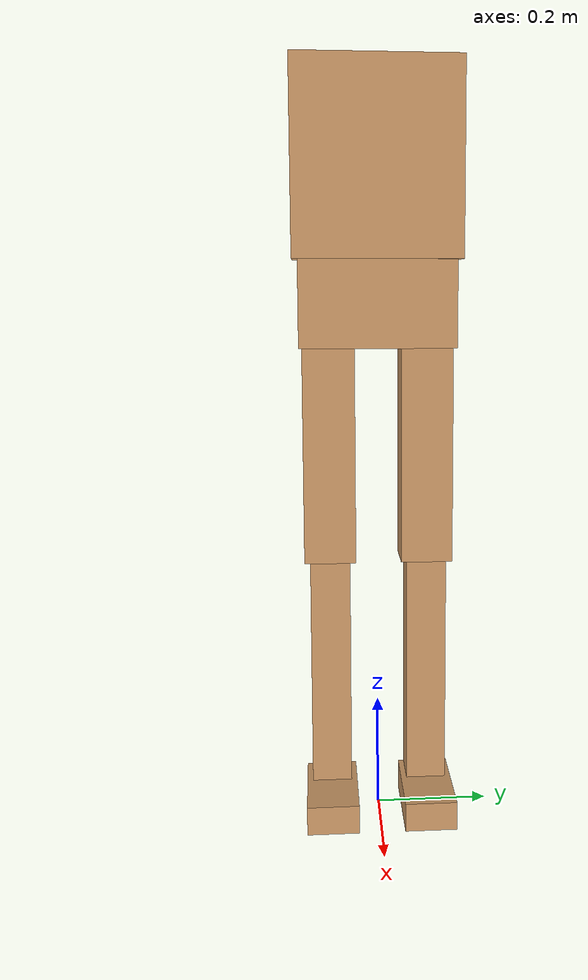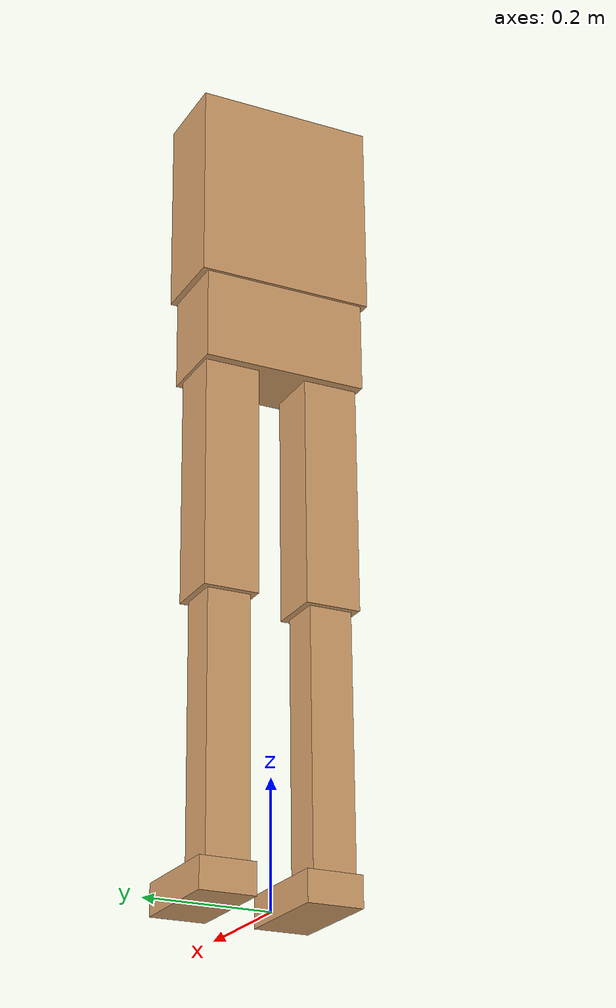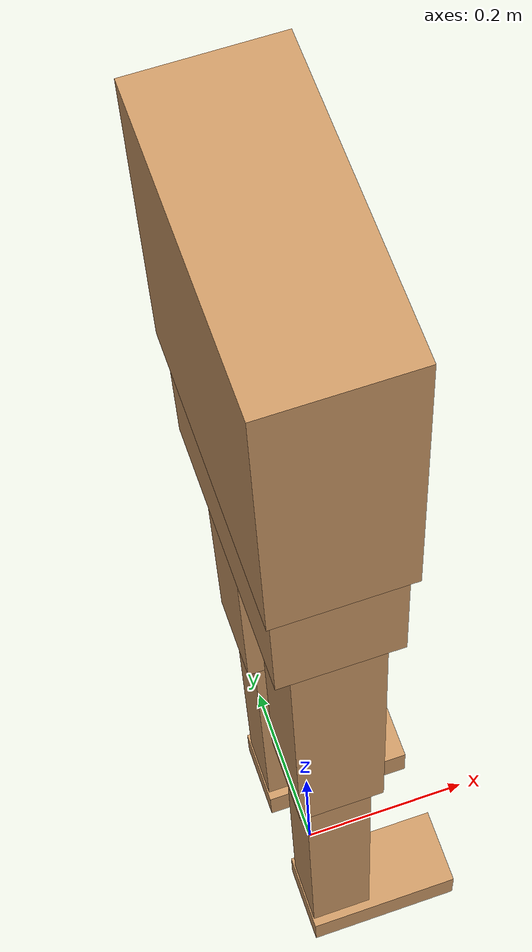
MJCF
<mujoco model="humanoid">
    <compiler angle="degree" inertiafromgeom="true"/>
    <default>
        <joint armature="1" damping="1" limited="true"/>
        <geom conaffinity="1" condim="1" contype="1" margin="0.001" material="geom" rgba="0.8 0.6 .4 1"/>
        <motor ctrllimited="true" ctrlrange="-.4 .4"/>
    </default>
    <option integrator="RK4" iterations="50" solver="PGS" timestep="0.003">
    </option>
    <size nkey="5" nuser_geom="1"/>
    <visual>
        <map fogend="5" fogstart="3"/>
    </visual>
    <asset>
        <texture builtin="gradient" height="100" rgb1=".4 .5 .6" rgb2="0 0 0" type="skybox" width="100"/>
        <texture builtin="flat" height="1278" mark="cross" markrgb="1 1 1" name="texgeom" random="0.01" rgb1="0.8 0.6 0.4" rgb2="0.8 0.6 0.4" type="cube" width="127"/>
        <texture builtin="checker" height="100" name="texplane" rgb1="0 0 0" rgb2="0.8 0.8 0.8" type="2d" width="100"/>
        <material name="MatPlane" reflectance="0.5" shininess="1" specular="1" texrepeat="60 60" texture="texplane"/>
        <material name="geom" texture="texgeom" texuniform="true"/>
    </asset>
    <worldbody>
       <body name="root" pos="0.0 0.0 0.89">
             <geom name="root" type="box" pos="0.0 0.0 0.0" size="0.01 0.01 0.01"  mass="0.01"/>
			 <body name="pelvis" pos="0.0 0.0 0.0">
	             <joint armature="10000.0" axis="1 0 0" damping="5" name="pelvis_x" pos="0.0 0.0 0.0" range="-0.00001 0.00001" stiffness="1000000" type="hinge"/>
                 <geom name="pelvis" type="box" pos="0.0 0.0 0.03" size="0.06 0.135 0.075"  mass="10.0"/>
			 </body>
		     <body name="torso" pos="0.0 0.0 0.10" user="128">
			     <joint armature="0.01" axis="1 0 0" damping="5" name="abdomen_x" pos="0.0 0.0 0.0" range="-15 15" stiffness="10" type="hinge"/>
                 <joint armature="0.01" axis="0 1 0" damping="5" name="abdomen_y" pos="0.0 0.0 0.0" range="0 30" stiffness="10" type="hinge"/>
                 <joint armature="0.01" axis="0 0 1" damping="5" name="abdomen_z" pos="0.0 0.0 0.0" range="-45 45" stiffness="20" type="hinge"/>
                 <geom name="torso" type="box"  pos= "0.0 0.0 0.17" size="0.065 0.145 0.165" mass="15.0"/>
			</body>

			<body name="right_thigh" pos="0.0 -0.085 0.0">
                <joint armature="0.01" axis="1 0 0" damping="5" name="right_hip_x" pos="0.0 0.0 0.0" range="-45 0" stiffness="10" type="hinge"/>
                <joint armature="0.01" axis="0 1 0" damping="5" name="right_hip_y" pos="0.0 0.0 0.0" range="-120 60" stiffness="20" type="hinge"/>
                <joint armature="0.01" axis="0 0 1" damping="5" name="right_hip_z" pos="0.0 0.0 0.0" range="-45 45" stiffness="10" type="hinge"/>
                <geom name="right_thigh" type="box" pos="0.0 0.0 -0.21075" size="0.045 0.045 0.21075"  mass="4.5"/>
                <body name="right_knee" pos="0.0 0.0 -0.4215">
                    <joint armature="0.010" axis="0 -1 0" name="right_knee" pos="0.0 0.0 0.0" range="-110 0" type="hinge"/>
					<geom name="right_knee" type="box" pos="0.0 0.0 -0.19493" size="0.035 0.035 0.215"  mass="3.0"/>
                    <body name="right_foot" pos="0.0 0.0 -0.40987">
                        <joint armature="0.0030" axis="1 0 0" name="right_ankle_x" pos="0.0 0.0 0.0" range="-30 30" type="hinge"/>
                        <joint armature="0.0030" axis="0 1 0" name="right_ankle_y" pos="0.0 0.0 0.0" range="-50 30" type="hinge"/>
                        <joint armature="0.0030" axis="0 0 1" name="right_ankle_z" pos="0.0 0.0 0.0" range="-30 30" type="hinge"/>
                        <geom name="right_foot" pos="0.0518 0.0 -0.0224" size="0.0885 0.045 0.025" type="box" user="0" mass="1.0"/>
                    </body>
                </body>
            </body>

		   <body name="left_thigh" pos="0.0 0.085 0.0">
                <joint armature="0.01" axis="1 0 0" damping="5" name="left_hip_x" pos="0.0 0.0 0.0" range="-45 0" stiffness="10" type="hinge"/>
                <joint armature="0.01" axis="0 1 0" damping="5" name="left_hip_y" pos="0.0 0.0 0.0" range="-120 60" stiffness="20" type="hinge"/>
                <joint armature="0.01" axis="0 0 1" damping="5" name="left_hip_z" pos="0.0 0.0 0.0" range="-45 45" stiffness="10" type="hinge"/>
                <geom name="left_thigh" type="box" pos="0.0 0.0 -0.21075" size="0.045 0.045 0.21075"  mass="4.5"/>
                <body name="left_knee" pos="0.0 0.0  -0.4215">
                    <joint armature="0.010" axis="0 -1 0" name="left_knee" pos="0.0 0.0 0.0" range="-110 0" type="hinge"/>
					<geom name="left_knee" type="box" pos="0.0 0.0 -0.19493" size="0.035 0.035 0.215"  mass="3.0"/>
                    <body name="left_foot" pos="0.0 0.0 -0.40987">
                        <joint armature="0.0030" axis="1 0 0" name="left_ankle_x" pos="0.0 0.0 0.0" range="-30 30" type="hinge"/>
                        <joint armature="0.0030" axis="0 1 0" name="left_ankle_y" pos="0.0 0.0 0.0" range="-50 30" type="hinge"/>
                        <joint armature="0.0030" axis="0 0 1" name="left_ankle_z" pos="0.0 0.0 0.0" range="-30 30" type="hinge"/>
                        <geom name="left_foot" pos="0.0518 0.0 -0.0224" size="0.0885 0.045  0.025" type="box" user="0" mass="1.0"/>
                    </body>
                </body>
            </body>
        </body>

    </worldbody>

    <tendon>
        <fixed name="left_hipknee">
            <joint coef="-1" joint="left_hip_y"/>
            <joint coef="1" joint="left_knee"/>
        </fixed>
        <fixed name="right_hipknee">
            <joint coef="-1" joint="right_hip_y"/>
            <joint coef="1" joint="right_knee"/>
        </fixed>
    </tendon>

</mujoco>
